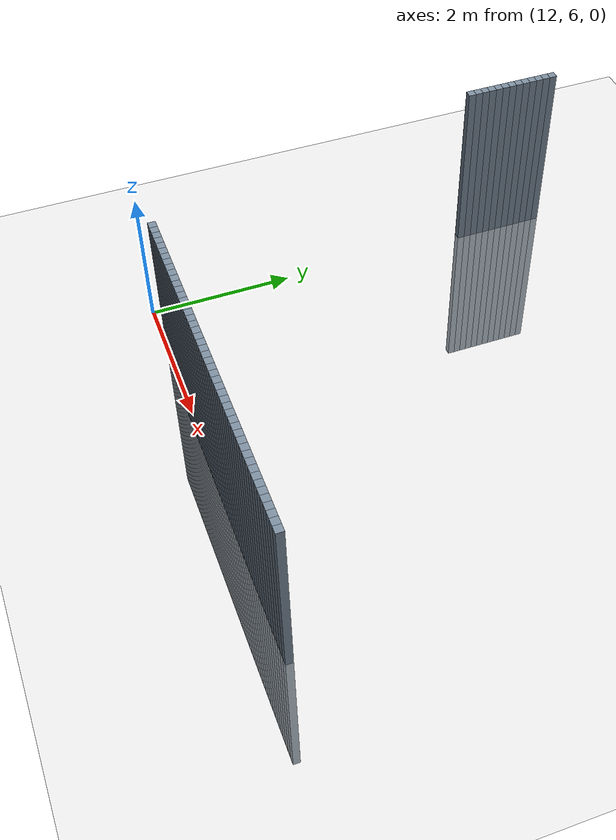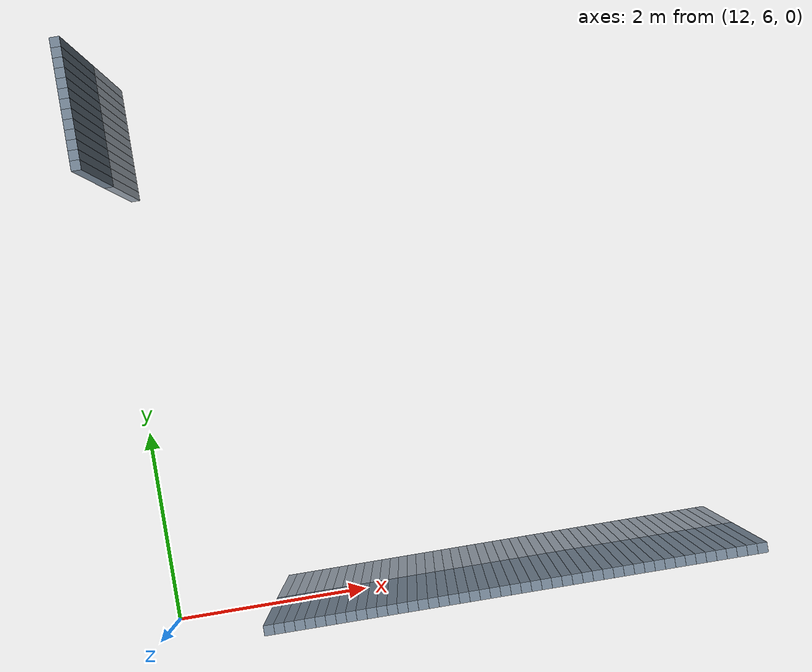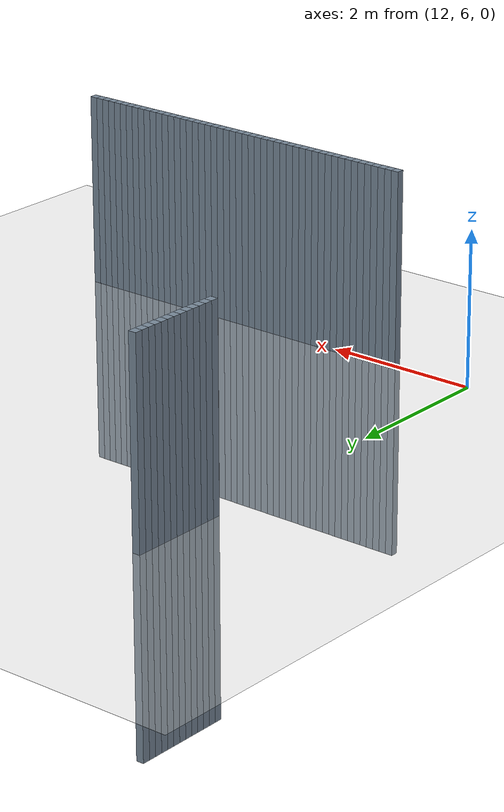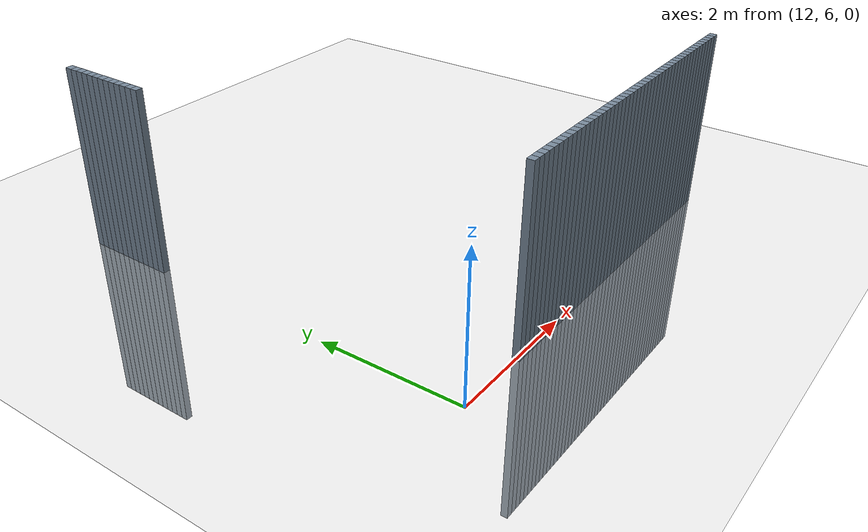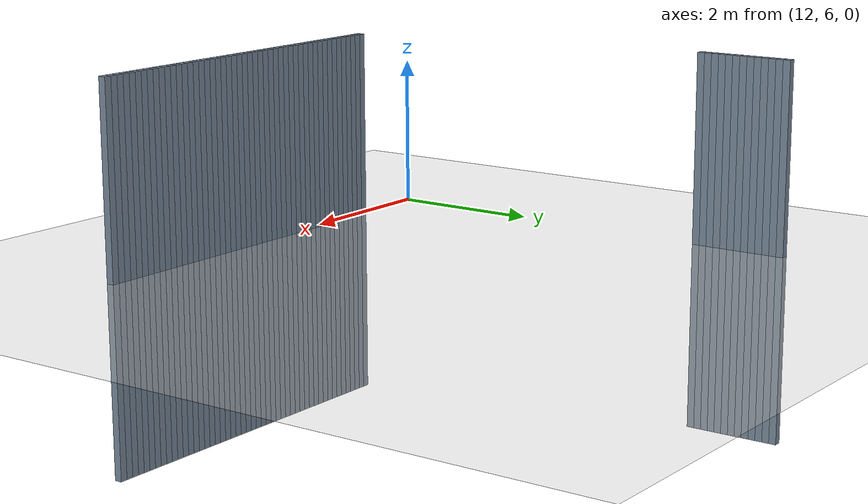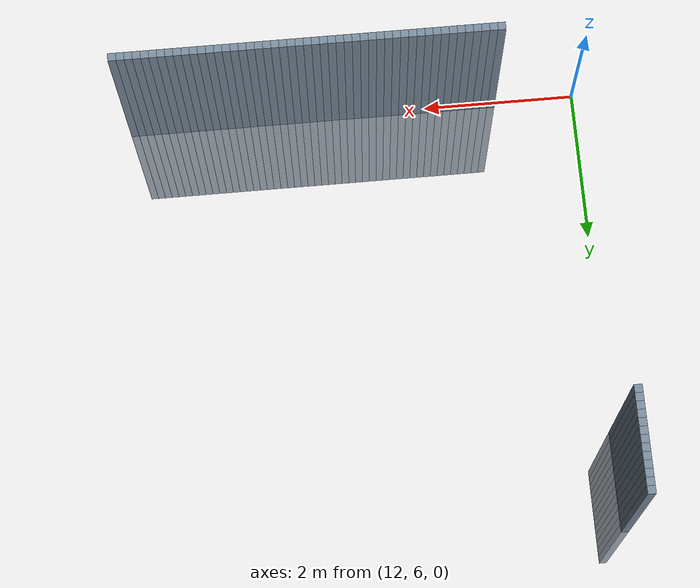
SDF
<sdf version="1.6">
 <world name="default">
  <model name="ground_plane">
   <static>1</static>
   <link name="link">
    <collision name="collision">
     <geometry><plane><normal>0 0 1</normal><size>100 100</size></plane></geometry>
     <surface><friction><ode><mu>100</mu><mu2>50</mu2></ode></friction></surface>
    </collision>
    <visual name="visual">
     <cast_shadows>0</cast_shadows>
     <geometry><plane><normal>0 0 1</normal><size>100 100</size></plane></geometry>
     <material>
      <script><uri>file://media/materials/scripts/gazebo.material</uri><name>Gazebo/Grey</name></script>
     </material>
    </visual>
   </link>
  </model>
  <model name="unit_cylinder_705">
   <static>1</static>
   <pose>12 10.7 0 0 -0 0</pose>
   <link name="link">
    <inertial>
     <mass>1</mass>
     <inertia><ixx>0.145833</ixx><ixy>0</ixy><ixz>0</ixz><iyy>0.145833</iyy><iyz>0</iyz><izz>0.125</izz></inertia>
    </inertial>
    <collision name="collision"><geometry><box><size>0.1 0.1 5</size></box></geometry></collision>
    <visual name="visual">
     <geometry><box><size>0.1 0.1 5</size></box></geometry>
     <material><ambient>0.466667 0.533333 0.6 1</ambient><diffuse>0.466667 0.533333 0.6 1</diffuse></material>
     <material>
      <script><name>Gazebo/Grey</name><uri>file://media/materials/scripts/gazebo.material</uri></script>
     </material>
    </visual>
   </link>
  </model>
  <model name="unit_cylinder_706">
   <static>1</static>
   <pose>12 10.8 0 0 -0 0</pose>
   <link name="link">
    <inertial>
     <mass>1</mass>
     <inertia><ixx>0.145833</ixx><ixy>0</ixy><ixz>0</ixz><iyy>0.145833</iyy><iyz>0</iyz><izz>0.125</izz></inertia>
    </inertial>
    <collision name="collision"><geometry><box><size>0.1 0.1 5</size></box></geometry></collision>
    <visual name="visual">
     <geometry><box><size>0.1 0.1 5</size></box></geometry>
     <material><ambient>0.466667 0.533333 0.6 1</ambient><diffuse>0.466667 0.533333 0.6 1</diffuse></material>
     <material>
      <script><name>Gazebo/Grey</name><uri>file://media/materials/scripts/gazebo.material</uri></script>
     </material>
    </visual>
   </link>
  </model>
  <model name="unit_cylinder_707">
   <static>1</static>
   <pose>12 10.9 0 0 -0 0</pose>
   <link name="link">
    <inertial>
     <mass>1</mass>
     <inertia><ixx>0.145833</ixx><ixy>0</ixy><ixz>0</ixz><iyy>0.145833</iyy><iyz>0</iyz><izz>0.125</izz></inertia>
    </inertial>
    <collision name="collision"><geometry><box><size>0.1 0.1 5</size></box></geometry></collision>
    <visual name="visual">
     <geometry><box><size>0.1 0.1 5</size></box></geometry>
     <material><ambient>0.466667 0.533333 0.6 1</ambient><diffuse>0.466667 0.533333 0.6 1</diffuse></material>
     <material>
      <script><name>Gazebo/Grey</name><uri>file://media/materials/scripts/gazebo.material</uri></script>
     </material>
    </visual>
   </link>
  </model>
  <model name="unit_cylinder_708">
   <static>1</static>
   <pose>12 11 0 0 -0 0</pose>
   <link name="link">
    <inertial>
     <mass>1</mass>
     <inertia><ixx>0.145833</ixx><ixy>0</ixy><ixz>0</ixz><iyy>0.145833</iyy><iyz>0</iyz><izz>0.125</izz></inertia>
    </inertial>
    <collision name="collision"><geometry><box><size>0.1 0.1 5</size></box></geometry></collision>
    <visual name="visual">
     <geometry><box><size>0.1 0.1 5</size></box></geometry>
     <material><ambient>0.466667 0.533333 0.6 1</ambient><diffuse>0.466667 0.533333 0.6 1</diffuse></material>
     <material>
      <script><name>Gazebo/Grey</name><uri>file://media/materials/scripts/gazebo.material</uri></script>
     </material>
    </visual>
   </link>
  </model>
  <model name="unit_cylinder_709">
   <static>1</static>
   <pose>12 11.1 0 0 -0 0</pose>
   <link name="link">
    <inertial>
     <mass>1</mass>
     <inertia><ixx>0.145833</ixx><ixy>0</ixy><ixz>0</ixz><iyy>0.145833</iyy><iyz>0</iyz><izz>0.125</izz></inertia>
    </inertial>
    <collision name="collision"><geometry><box><size>0.1 0.1 5</size></box></geometry></collision>
    <visual name="visual">
     <geometry><box><size>0.1 0.1 5</size></box></geometry>
     <material><ambient>0.466667 0.533333 0.6 1</ambient><diffuse>0.466667 0.533333 0.6 1</diffuse></material>
     <material>
      <script><name>Gazebo/Grey</name><uri>file://media/materials/scripts/gazebo.material</uri></script>
     </material>
    </visual>
   </link>
  </model>
  <model name="unit_cylinder_710">
   <static>1</static>
   <pose>12 11.2 0 0 -0 0</pose>
   <link name="link">
    <inertial>
     <mass>1</mass>
     <inertia><ixx>0.145833</ixx><ixy>0</ixy><ixz>0</ixz><iyy>0.145833</iyy><iyz>0</iyz><izz>0.125</izz></inertia>
    </inertial>
    <collision name="collision"><geometry><box><size>0.1 0.1 5</size></box></geometry></collision>
    <visual name="visual">
     <geometry><box><size>0.1 0.1 5</size></box></geometry>
     <material><ambient>0.466667 0.533333 0.6 1</ambient><diffuse>0.466667 0.533333 0.6 1</diffuse></material>
     <material>
      <script><name>Gazebo/Grey</name><uri>file://media/materials/scripts/gazebo.material</uri></script>
     </material>
    </visual>
   </link>
  </model>
  <model name="unit_cylinder_711">
   <static>1</static>
   <pose>12 11.3 0 0 -0 0</pose>
   <link name="link">
    <inertial>
     <mass>1</mass>
     <inertia><ixx>0.145833</ixx><ixy>0</ixy><ixz>0</ixz><iyy>0.145833</iyy><iyz>0</iyz><izz>0.125</izz></inertia>
    </inertial>
    <collision name="collision"><geometry><box><size>0.1 0.1 5</size></box></geometry></collision>
    <visual name="visual">
     <geometry><box><size>0.1 0.1 5</size></box></geometry>
     <material><ambient>0.466667 0.533333 0.6 1</ambient><diffuse>0.466667 0.533333 0.6 1</diffuse></material>
     <material>
      <script><name>Gazebo/Grey</name><uri>file://media/materials/scripts/gazebo.material</uri></script>
     </material>
    </visual>
   </link>
  </model>
  <model name="unit_cylinder_712">
   <static>1</static>
   <pose>12 11.4 0 0 -0 0</pose>
   <link name="link">
    <inertial>
     <mass>1</mass>
     <inertia><ixx>0.145833</ixx><ixy>0</ixy><ixz>0</ixz><iyy>0.145833</iyy><iyz>0</iyz><izz>0.125</izz></inertia>
    </inertial>
    <collision name="collision"><geometry><box><size>0.1 0.1 5</size></box></geometry></collision>
    <visual name="visual">
     <geometry><box><size>0.1 0.1 5</size></box></geometry>
     <material><ambient>0.466667 0.533333 0.6 1</ambient><diffuse>0.466667 0.533333 0.6 1</diffuse></material>
     <material>
      <script><name>Gazebo/Grey</name><uri>file://media/materials/scripts/gazebo.material</uri></script>
     </material>
    </visual>
   </link>
  </model>
  <model name="unit_cylinder_713">
   <static>1</static>
   <pose>12 11.5 0 0 -0 0</pose>
   <link name="link">
    <inertial>
     <mass>1</mass>
     <inertia><ixx>0.145833</ixx><ixy>0</ixy><ixz>0</ixz><iyy>0.145833</iyy><iyz>0</iyz><izz>0.125</izz></inertia>
    </inertial>
    <collision name="collision"><geometry><box><size>0.1 0.1 5</size></box></geometry></collision>
    <visual name="visual">
     <geometry><box><size>0.1 0.1 5</size></box></geometry>
     <material><ambient>0.466667 0.533333 0.6 1</ambient><diffuse>0.466667 0.533333 0.6 1</diffuse></material>
     <material>
      <script><name>Gazebo/Grey</name><uri>file://media/materials/scripts/gazebo.material</uri></script>
     </material>
    </visual>
   </link>
  </model>
  <model name="unit_cylinder_714">
   <static>1</static>
   <pose>12 11.6 0 0 -0 0</pose>
   <link name="link">
    <inertial>
     <mass>1</mass>
     <inertia><ixx>0.145833</ixx><ixy>0</ixy><ixz>0</ixz><iyy>0.145833</iyy><iyz>0</iyz><izz>0.125</izz></inertia>
    </inertial>
    <collision name="collision"><geometry><box><size>0.1 0.1 5</size></box></geometry></collision>
    <visual name="visual">
     <geometry><box><size>0.1 0.1 5</size></box></geometry>
     <material><ambient>0.466667 0.533333 0.6 1</ambient><diffuse>0.466667 0.533333 0.6 1</diffuse></material>
     <material>
      <script><name>Gazebo/Grey</name><uri>file://media/materials/scripts/gazebo.material</uri></script>
     </material>
    </visual>
   </link>
  </model>
  <model name="unit_cylinder_715">
   <static>1</static>
   <pose>12 11.7 0 0 -0 0</pose>
   <link name="link">
    <inertial>
     <mass>1</mass>
     <inertia><ixx>0.145833</ixx><ixy>0</ixy><ixz>0</ixz><iyy>0.145833</iyy><iyz>0</iyz><izz>0.125</izz></inertia>
    </inertial>
    <collision name="collision"><geometry><box><size>0.1 0.1 5</size></box></geometry></collision>
    <visual name="visual">
     <geometry><box><size>0.1 0.1 5</size></box></geometry>
     <material><ambient>0.466667 0.533333 0.6 1</ambient><diffuse>0.466667 0.533333 0.6 1</diffuse></material>
     <material>
      <script><name>Gazebo/Grey</name><uri>file://media/materials/scripts/gazebo.material</uri></script>
     </material>
    </visual>
   </link>
  </model>
  <model name="unit_cylinder_716">
   <static>1</static>
   <pose>12 11.8 0 0 -0 0</pose>
   <link name="link">
    <inertial>
     <mass>1</mass>
     <inertia><ixx>0.145833</ixx><ixy>0</ixy><ixz>0</ixz><iyy>0.145833</iyy><iyz>0</iyz><izz>0.125</izz></inertia>
    </inertial>
    <collision name="collision"><geometry><box><size>0.1 0.1 5</size></box></geometry></collision>
    <visual name="visual">
     <geometry><box><size>0.1 0.1 5</size></box></geometry>
     <material><ambient>0.466667 0.533333 0.6 1</ambient><diffuse>0.466667 0.533333 0.6 1</diffuse></material>
     <material>
      <script><name>Gazebo/Grey</name><uri>file://media/materials/scripts/gazebo.material</uri></script>
     </material>
    </visual>
   </link>
  </model>
  <model name="unit_cylinder_717">
   <static>1</static>
   <pose>12 11.9 0 0 -0 0</pose>
   <link name="link">
    <inertial>
     <mass>1</mass>
     <inertia><ixx>0.145833</ixx><ixy>0</ixy><ixz>0</ixz><iyy>0.145833</iyy><iyz>0</iyz><izz>0.125</izz></inertia>
    </inertial>
    <collision name="collision"><geometry><box><size>0.1 0.1 5</size></box></geometry></collision>
    <visual name="visual">
     <geometry><box><size>0.1 0.1 5</size></box></geometry>
     <material><ambient>0.466667 0.533333 0.6 1</ambient><diffuse>0.466667 0.533333 0.6 1</diffuse></material>
     <material>
      <script><name>Gazebo/Grey</name><uri>file://media/materials/scripts/gazebo.material</uri></script>
     </material>
    </visual>
   </link>
  </model>
  <model name="unit_cylinder_800">
   <static>1</static>
   <pose>13.1 6 0 0 -0 0</pose>
   <link name="link">
    <inertial>
     <mass>1</mass>
     <inertia><ixx>0.145833</ixx><ixy>0</ixy><ixz>0</ixz><iyy>0.145833</iyy><iyz>0</iyz><izz>0.125</izz></inertia>
    </inertial>
    <collision name="collision"><geometry><box><size>0.1 0.1 5</size></box></geometry></collision>
    <visual name="visual">
     <geometry><box><size>0.1 0.1 5</size></box></geometry>
     <material><ambient>0.466667 0.533333 0.6 1</ambient><diffuse>0.466667 0.533333 0.6 1</diffuse></material>
     <material>
      <script><name>Gazebo/Grey</name><uri>file://media/materials/scripts/gazebo.material</uri></script>
     </material>
    </visual>
   </link>
  </model>
  <model name="unit_cylinder_802">
   <static>1</static>
   <pose>13.2 6 0 0 -0 0</pose>
   <link name="link">
    <inertial>
     <mass>1</mass>
     <inertia><ixx>0.145833</ixx><ixy>0</ixy><ixz>0</ixz><iyy>0.145833</iyy><iyz>0</iyz><izz>0.125</izz></inertia>
    </inertial>
    <collision name="collision"><geometry><box><size>0.1 0.1 5</size></box></geometry></collision>
    <visual name="visual">
     <geometry><box><size>0.1 0.1 5</size></box></geometry>
     <material><ambient>0.466667 0.533333 0.6 1</ambient><diffuse>0.466667 0.533333 0.6 1</diffuse></material>
     <material>
      <script><name>Gazebo/Grey</name><uri>file://media/materials/scripts/gazebo.material</uri></script>
     </material>
    </visual>
   </link>
  </model>
  <model name="unit_cylinder_804">
   <static>1</static>
   <pose>13.3 6 0 0 -0 0</pose>
   <link name="link">
    <inertial>
     <mass>1</mass>
     <inertia><ixx>0.145833</ixx><ixy>0</ixy><ixz>0</ixz><iyy>0.145833</iyy><iyz>0</iyz><izz>0.125</izz></inertia>
    </inertial>
    <collision name="collision"><geometry><box><size>0.1 0.1 5</size></box></geometry></collision>
    <visual name="visual">
     <geometry><box><size>0.1 0.1 5</size></box></geometry>
     <material><ambient>0.466667 0.533333 0.6 1</ambient><diffuse>0.466667 0.533333 0.6 1</diffuse></material>
     <material>
      <script><name>Gazebo/Grey</name><uri>file://media/materials/scripts/gazebo.material</uri></script>
     </material>
    </visual>
   </link>
  </model>
  <model name="unit_cylinder_806">
   <static>1</static>
   <pose>13.4 6 0 0 -0 0</pose>
   <link name="link">
    <inertial>
     <mass>1</mass>
     <inertia><ixx>0.145833</ixx><ixy>0</ixy><ixz>0</ixz><iyy>0.145833</iyy><iyz>0</iyz><izz>0.125</izz></inertia>
    </inertial>
    <collision name="collision"><geometry><box><size>0.1 0.1 5</size></box></geometry></collision>
    <visual name="visual">
     <geometry><box><size>0.1 0.1 5</size></box></geometry>
     <material><ambient>0.466667 0.533333 0.6 1</ambient><diffuse>0.466667 0.533333 0.6 1</diffuse></material>
     <material>
      <script><name>Gazebo/Grey</name><uri>file://media/materials/scripts/gazebo.material</uri></script>
     </material>
    </visual>
   </link>
  </model>
  <model name="unit_cylinder_808">
   <static>1</static>
   <pose>13.5 6 0 0 -0 0</pose>
   <link name="link">
    <inertial>
     <mass>1</mass>
     <inertia><ixx>0.145833</ixx><ixy>0</ixy><ixz>0</ixz><iyy>0.145833</iyy><iyz>0</iyz><izz>0.125</izz></inertia>
    </inertial>
    <collision name="collision"><geometry><box><size>0.1 0.1 5</size></box></geometry></collision>
    <visual name="visual">
     <geometry><box><size>0.1 0.1 5</size></box></geometry>
     <material><ambient>0.466667 0.533333 0.6 1</ambient><diffuse>0.466667 0.533333 0.6 1</diffuse></material>
     <material>
      <script><name>Gazebo/Grey</name><uri>file://media/materials/scripts/gazebo.material</uri></script>
     </material>
    </visual>
   </link>
  </model>
  <model name="unit_cylinder_810">
   <static>1</static>
   <pose>13.6 6 0 0 -0 0</pose>
   <link name="link">
    <inertial>
     <mass>1</mass>
     <inertia><ixx>0.145833</ixx><ixy>0</ixy><ixz>0</ixz><iyy>0.145833</iyy><iyz>0</iyz><izz>0.125</izz></inertia>
    </inertial>
    <collision name="collision"><geometry><box><size>0.1 0.1 5</size></box></geometry></collision>
    <visual name="visual">
     <geometry><box><size>0.1 0.1 5</size></box></geometry>
     <material><ambient>0.466667 0.533333 0.6 1</ambient><diffuse>0.466667 0.533333 0.6 1</diffuse></material>
     <material>
      <script><name>Gazebo/Grey</name><uri>file://media/materials/scripts/gazebo.material</uri></script>
     </material>
    </visual>
   </link>
  </model>
  <model name="unit_cylinder_812">
   <static>1</static>
   <pose>13.7 6 0 0 -0 0</pose>
   <link name="link">
    <inertial>
     <mass>1</mass>
     <inertia><ixx>0.145833</ixx><ixy>0</ixy><ixz>0</ixz><iyy>0.145833</iyy><iyz>0</iyz><izz>0.125</izz></inertia>
    </inertial>
    <collision name="collision"><geometry><box><size>0.1 0.1 5</size></box></geometry></collision>
    <visual name="visual">
     <geometry><box><size>0.1 0.1 5</size></box></geometry>
     <material><ambient>0.466667 0.533333 0.6 1</ambient><diffuse>0.466667 0.533333 0.6 1</diffuse></material>
     <material>
      <script><name>Gazebo/Grey</name><uri>file://media/materials/scripts/gazebo.material</uri></script>
     </material>
    </visual>
   </link>
  </model>
  <model name="unit_cylinder_814">
   <static>1</static>
   <pose>13.8 6 0 0 -0 0</pose>
   <link name="link">
    <inertial>
     <mass>1</mass>
     <inertia><ixx>0.145833</ixx><ixy>0</ixy><ixz>0</ixz><iyy>0.145833</iyy><iyz>0</iyz><izz>0.125</izz></inertia>
    </inertial>
    <collision name="collision"><geometry><box><size>0.1 0.1 5</size></box></geometry></collision>
    <visual name="visual">
     <geometry><box><size>0.1 0.1 5</size></box></geometry>
     <material><ambient>0.466667 0.533333 0.6 1</ambient><diffuse>0.466667 0.533333 0.6 1</diffuse></material>
     <material>
      <script><name>Gazebo/Grey</name><uri>file://media/materials/scripts/gazebo.material</uri></script>
     </material>
    </visual>
   </link>
  </model>
  <model name="unit_cylinder_816">
   <static>1</static>
   <pose>13.9 6 0 0 -0 0</pose>
   <link name="link">
    <inertial>
     <mass>1</mass>
     <inertia><ixx>0.145833</ixx><ixy>0</ixy><ixz>0</ixz><iyy>0.145833</iyy><iyz>0</iyz><izz>0.125</izz></inertia>
    </inertial>
    <collision name="collision"><geometry><box><size>0.1 0.1 5</size></box></geometry></collision>
    <visual name="visual">
     <geometry><box><size>0.1 0.1 5</size></box></geometry>
     <material><ambient>0.466667 0.533333 0.6 1</ambient><diffuse>0.466667 0.533333 0.6 1</diffuse></material>
     <material>
      <script><name>Gazebo/Grey</name><uri>file://media/materials/scripts/gazebo.material</uri></script>
     </material>
    </visual>
   </link>
  </model>
  <model name="unit_cylinder_818">
   <static>1</static>
   <pose>14 6 0 0 -0 0</pose>
   <link name="link">
    <inertial>
     <mass>1</mass>
     <inertia><ixx>0.145833</ixx><ixy>0</ixy><ixz>0</ixz><iyy>0.145833</iyy><iyz>0</iyz><izz>0.125</izz></inertia>
    </inertial>
    <collision name="collision"><geometry><box><size>0.1 0.1 5</size></box></geometry></collision>
    <visual name="visual">
     <geometry><box><size>0.1 0.1 5</size></box></geometry>
     <material><ambient>0.466667 0.533333 0.6 1</ambient><diffuse>0.466667 0.533333 0.6 1</diffuse></material>
     <material>
      <script><name>Gazebo/Grey</name><uri>file://media/materials/scripts/gazebo.material</uri></script>
     </material>
    </visual>
   </link>
  </model>
  <model name="unit_cylinder_820">
   <static>1</static>
   <pose>14.1 6 0 0 -0 0</pose>
   <link name="link">
    <inertial>
     <mass>1</mass>
     <inertia><ixx>0.145833</ixx><ixy>0</ixy><ixz>0</ixz><iyy>0.145833</iyy><iyz>0</iyz><izz>0.125</izz></inertia>
    </inertial>
    <collision name="collision"><geometry><box><size>0.1 0.1 5</size></box></geometry></collision>
    <visual name="visual">
     <geometry><box><size>0.1 0.1 5</size></box></geometry>
     <material><ambient>0.466667 0.533333 0.6 1</ambient><diffuse>0.466667 0.533333 0.6 1</diffuse></material>
     <material>
      <script><name>Gazebo/Grey</name><uri>file://media/materials/scripts/gazebo.material</uri></script>
     </material>
    </visual>
   </link>
  </model>
  <model name="unit_cylinder_822">
   <static>1</static>
   <pose>14.2 6 0 0 -0 0</pose>
   <link name="link">
    <inertial>
     <mass>1</mass>
     <inertia><ixx>0.145833</ixx><ixy>0</ixy><ixz>0</ixz><iyy>0.145833</iyy><iyz>0</iyz><izz>0.125</izz></inertia>
    </inertial>
    <collision name="collision"><geometry><box><size>0.1 0.1 5</size></box></geometry></collision>
    <visual name="visual">
     <geometry><box><size>0.1 0.1 5</size></box></geometry>
     <material><ambient>0.466667 0.533333 0.6 1</ambient><diffuse>0.466667 0.533333 0.6 1</diffuse></material>
     <material>
      <script><name>Gazebo/Grey</name><uri>file://media/materials/scripts/gazebo.material</uri></script>
     </material>
    </visual>
   </link>
  </model>
  <model name="unit_cylinder_824">
   <static>1</static>
   <pose>14.3 6 0 0 -0 0</pose>
   <link name="link">
    <inertial>
     <mass>1</mass>
     <inertia><ixx>0.145833</ixx><ixy>0</ixy><ixz>0</ixz><iyy>0.145833</iyy><iyz>0</iyz><izz>0.125</izz></inertia>
    </inertial>
    <collision name="collision"><geometry><box><size>0.1 0.1 5</size></box></geometry></collision>
    <visual name="visual">
     <geometry><box><size>0.1 0.1 5</size></box></geometry>
     <material><ambient>0.466667 0.533333 0.6 1</ambient><diffuse>0.466667 0.533333 0.6 1</diffuse></material>
     <material>
      <script><name>Gazebo/Grey</name><uri>file://media/materials/scripts/gazebo.material</uri></script>
     </material>
    </visual>
   </link>
  </model>
  <model name="unit_cylinder_826">
   <static>1</static>
   <pose>14.4 6 0 0 -0 0</pose>
   <link name="link">
    <inertial>
     <mass>1</mass>
     <inertia><ixx>0.145833</ixx><ixy>0</ixy><ixz>0</ixz><iyy>0.145833</iyy><iyz>0</iyz><izz>0.125</izz></inertia>
    </inertial>
    <collision name="collision"><geometry><box><size>0.1 0.1 5</size></box></geometry></collision>
    <visual name="visual">
     <geometry><box><size>0.1 0.1 5</size></box></geometry>
     <material><ambient>0.466667 0.533333 0.6 1</ambient><diffuse>0.466667 0.533333 0.6 1</diffuse></material>
     <material>
      <script><name>Gazebo/Grey</name><uri>file://media/materials/scripts/gazebo.material</uri></script>
     </material>
    </visual>
   </link>
  </model>
  <model name="unit_cylinder_828">
   <static>1</static>
   <pose>14.5 6 0 0 -0 0</pose>
   <link name="link">
    <inertial>
     <mass>1</mass>
     <inertia><ixx>0.145833</ixx><ixy>0</ixy><ixz>0</ixz><iyy>0.145833</iyy><iyz>0</iyz><izz>0.125</izz></inertia>
    </inertial>
    <collision name="collision"><geometry><box><size>0.1 0.1 5</size></box></geometry></collision>
    <visual name="visual">
     <geometry><box><size>0.1 0.1 5</size></box></geometry>
     <material><ambient>0.466667 0.533333 0.6 1</ambient><diffuse>0.466667 0.533333 0.6 1</diffuse></material>
     <material>
      <script><name>Gazebo/Grey</name><uri>file://media/materials/scripts/gazebo.material</uri></script>
     </material>
    </visual>
   </link>
  </model>
  <model name="unit_cylinder_830">
   <static>1</static>
   <pose>14.6 6 0 0 -0 0</pose>
   <link name="link">
    <inertial>
     <mass>1</mass>
     <inertia><ixx>0.145833</ixx><ixy>0</ixy><ixz>0</ixz><iyy>0.145833</iyy><iyz>0</iyz><izz>0.125</izz></inertia>
    </inertial>
    <collision name="collision"><geometry><box><size>0.1 0.1 5</size></box></geometry></collision>
    <visual name="visual">
     <geometry><box><size>0.1 0.1 5</size></box></geometry>
     <material><ambient>0.466667 0.533333 0.6 1</ambient><diffuse>0.466667 0.533333 0.6 1</diffuse></material>
     <material>
      <script><name>Gazebo/Grey</name><uri>file://media/materials/scripts/gazebo.material</uri></script>
     </material>
    </visual>
   </link>
  </model>
  <model name="unit_cylinder_832">
   <static>1</static>
   <pose>14.7 6 0 0 -0 0</pose>
   <link name="link">
    <inertial>
     <mass>1</mass>
     <inertia><ixx>0.145833</ixx><ixy>0</ixy><ixz>0</ixz><iyy>0.145833</iyy><iyz>0</iyz><izz>0.125</izz></inertia>
    </inertial>
    <collision name="collision"><geometry><box><size>0.1 0.1 5</size></box></geometry></collision>
    <visual name="visual">
     <geometry><box><size>0.1 0.1 5</size></box></geometry>
     <material><ambient>0.466667 0.533333 0.6 1</ambient><diffuse>0.466667 0.533333 0.6 1</diffuse></material>
     <material>
      <script><name>Gazebo/Grey</name><uri>file://media/materials/scripts/gazebo.material</uri></script>
     </material>
    </visual>
   </link>
  </model>
  <model name="unit_cylinder_834">
   <static>1</static>
   <pose>14.8 6 0 0 -0 0</pose>
   <link name="link">
    <inertial>
     <mass>1</mass>
     <inertia><ixx>0.145833</ixx><ixy>0</ixy><ixz>0</ixz><iyy>0.145833</iyy><iyz>0</iyz><izz>0.125</izz></inertia>
    </inertial>
    <collision name="collision"><geometry><box><size>0.1 0.1 5</size></box></geometry></collision>
    <visual name="visual">
     <geometry><box><size>0.1 0.1 5</size></box></geometry>
     <material><ambient>0.466667 0.533333 0.6 1</ambient><diffuse>0.466667 0.533333 0.6 1</diffuse></material>
     <material>
      <script><name>Gazebo/Grey</name><uri>file://media/materials/scripts/gazebo.material</uri></script>
     </material>
    </visual>
   </link>
  </model>
  <model name="unit_cylinder_836">
   <static>1</static>
   <pose>14.9 6 0 0 -0 0</pose>
   <link name="link">
    <inertial>
     <mass>1</mass>
     <inertia><ixx>0.145833</ixx><ixy>0</ixy><ixz>0</ixz><iyy>0.145833</iyy><iyz>0</iyz><izz>0.125</izz></inertia>
    </inertial>
    <collision name="collision"><geometry><box><size>0.1 0.1 5</size></box></geometry></collision>
    <visual name="visual">
     <geometry><box><size>0.1 0.1 5</size></box></geometry>
     <material><ambient>0.466667 0.533333 0.6 1</ambient><diffuse>0.466667 0.533333 0.6 1</diffuse></material>
     <material>
      <script><name>Gazebo/Grey</name><uri>file://media/materials/scripts/gazebo.material</uri></script>
     </material>
    </visual>
   </link>
  </model>
  <model name="unit_cylinder_838">
   <static>1</static>
   <pose>15 6 0 0 -0 0</pose>
   <link name="link">
    <inertial>
     <mass>1</mass>
     <inertia><ixx>0.145833</ixx><ixy>0</ixy><ixz>0</ixz><iyy>0.145833</iyy><iyz>0</iyz><izz>0.125</izz></inertia>
    </inertial>
    <collision name="collision"><geometry><box><size>0.1 0.1 5</size></box></geometry></collision>
    <visual name="visual">
     <geometry><box><size>0.1 0.1 5</size></box></geometry>
     <material><ambient>0.466667 0.533333 0.6 1</ambient><diffuse>0.466667 0.533333 0.6 1</diffuse></material>
     <material>
      <script><name>Gazebo/Grey</name><uri>file://media/materials/scripts/gazebo.material</uri></script>
     </material>
    </visual>
   </link>
  </model>
  <model name="unit_cylinder_840">
   <static>1</static>
   <pose>15.1 6 0 0 -0 0</pose>
   <link name="link">
    <inertial>
     <mass>1</mass>
     <inertia><ixx>0.145833</ixx><ixy>0</ixy><ixz>0</ixz><iyy>0.145833</iyy><iyz>0</iyz><izz>0.125</izz></inertia>
    </inertial>
    <collision name="collision"><geometry><box><size>0.1 0.1 5</size></box></geometry></collision>
    <visual name="visual">
     <geometry><box><size>0.1 0.1 5</size></box></geometry>
     <material><ambient>0.466667 0.533333 0.6 1</ambient><diffuse>0.466667 0.533333 0.6 1</diffuse></material>
     <material>
      <script><name>Gazebo/Grey</name><uri>file://media/materials/scripts/gazebo.material</uri></script>
     </material>
    </visual>
   </link>
  </model>
  <model name="unit_cylinder_842">
   <static>1</static>
   <pose>15.2 6 0 0 -0 0</pose>
   <link name="link">
    <inertial>
     <mass>1</mass>
     <inertia><ixx>0.145833</ixx><ixy>0</ixy><ixz>0</ixz><iyy>0.145833</iyy><iyz>0</iyz><izz>0.125</izz></inertia>
    </inertial>
    <collision name="collision"><geometry><box><size>0.1 0.1 5</size></box></geometry></collision>
    <visual name="visual">
     <geometry><box><size>0.1 0.1 5</size></box></geometry>
     <material><ambient>0.466667 0.533333 0.6 1</ambient><diffuse>0.466667 0.533333 0.6 1</diffuse></material>
     <material>
      <script><name>Gazebo/Grey</name><uri>file://media/materials/scripts/gazebo.material</uri></script>
     </material>
    </visual>
   </link>
  </model>
  <model name="unit_cylinder_844">
   <static>1</static>
   <pose>15.3 6 0 0 -0 0</pose>
   <link name="link">
    <inertial>
     <mass>1</mass>
     <inertia><ixx>0.145833</ixx><ixy>0</ixy><ixz>0</ixz><iyy>0.145833</iyy><iyz>0</iyz><izz>0.125</izz></inertia>
    </inertial>
    <collision name="collision"><geometry><box><size>0.1 0.1 5</size></box></geometry></collision>
    <visual name="visual">
     <geometry><box><size>0.1 0.1 5</size></box></geometry>
     <material><ambient>0.466667 0.533333 0.6 1</ambient><diffuse>0.466667 0.533333 0.6 1</diffuse></material>
     <material>
      <script><name>Gazebo/Grey</name><uri>file://media/materials/scripts/gazebo.material</uri></script>
     </material>
    </visual>
   </link>
  </model>
  <model name="unit_cylinder_846">
   <static>1</static>
   <pose>15.4 6 0 0 -0 0</pose>
   <link name="link">
    <inertial>
     <mass>1</mass>
     <inertia><ixx>0.145833</ixx><ixy>0</ixy><ixz>0</ixz><iyy>0.145833</iyy><iyz>0</iyz><izz>0.125</izz></inertia>
    </inertial>
    <collision name="collision"><geometry><box><size>0.1 0.1 5</size></box></geometry></collision>
    <visual name="visual">
     <geometry><box><size>0.1 0.1 5</size></box></geometry>
     <material><ambient>0.466667 0.533333 0.6 1</ambient><diffuse>0.466667 0.533333 0.6 1</diffuse></material>
     <material>
      <script><name>Gazebo/Grey</name><uri>file://media/materials/scripts/gazebo.material</uri></script>
     </material>
    </visual>
   </link>
  </model>
  <model name="unit_cylinder_848">
   <static>1</static>
   <pose>15.5 6 0 0 -0 0</pose>
   <link name="link">
    <inertial>
     <mass>1</mass>
     <inertia><ixx>0.145833</ixx><ixy>0</ixy><ixz>0</ixz><iyy>0.145833</iyy><iyz>0</iyz><izz>0.125</izz></inertia>
    </inertial>
    <collision name="collision"><geometry><box><size>0.1 0.1 5</size></box></geometry></collision>
    <visual name="visual">
     <geometry><box><size>0.1 0.1 5</size></box></geometry>
     <material><ambient>0.466667 0.533333 0.6 1</ambient><diffuse>0.466667 0.533333 0.6 1</diffuse></material>
     <material>
      <script><name>Gazebo/Grey</name><uri>file://media/materials/scripts/gazebo.material</uri></script>
     </material>
    </visual>
   </link>
  </model>
  <model name="unit_cylinder_850">
   <static>1</static>
   <pose>15.6 6 0 0 -0 0</pose>
   <link name="link">
    <inertial>
     <mass>1</mass>
     <inertia><ixx>0.145833</ixx><ixy>0</ixy><ixz>0</ixz><iyy>0.145833</iyy><iyz>0</iyz><izz>0.125</izz></inertia>
    </inertial>
    <collision name="collision"><geometry><box><size>0.1 0.1 5</size></box></geometry></collision>
    <visual name="visual">
     <geometry><box><size>0.1 0.1 5</size></box></geometry>
     <material><ambient>0.466667 0.533333 0.6 1</ambient><diffuse>0.466667 0.533333 0.6 1</diffuse></material>
     <material>
      <script><name>Gazebo/Grey</name><uri>file://media/materials/scripts/gazebo.material</uri></script>
     </material>
    </visual>
   </link>
  </model>
  <model name="unit_cylinder_852">
   <static>1</static>
   <pose>15.7 6 0 0 -0 0</pose>
   <link name="link">
    <inertial>
     <mass>1</mass>
     <inertia><ixx>0.145833</ixx><ixy>0</ixy><ixz>0</ixz><iyy>0.145833</iyy><iyz>0</iyz><izz>0.125</izz></inertia>
    </inertial>
    <collision name="collision"><geometry><box><size>0.1 0.1 5</size></box></geometry></collision>
    <visual name="visual">
     <geometry><box><size>0.1 0.1 5</size></box></geometry>
     <material><ambient>0.466667 0.533333 0.6 1</ambient><diffuse>0.466667 0.533333 0.6 1</diffuse></material>
     <material>
      <script><name>Gazebo/Grey</name><uri>file://media/materials/scripts/gazebo.material</uri></script>
     </material>
    </visual>
   </link>
  </model>
  <model name="unit_cylinder_854">
   <static>1</static>
   <pose>15.8 6 0 0 -0 0</pose>
   <link name="link">
    <inertial>
     <mass>1</mass>
     <inertia><ixx>0.145833</ixx><ixy>0</ixy><ixz>0</ixz><iyy>0.145833</iyy><iyz>0</iyz><izz>0.125</izz></inertia>
    </inertial>
    <collision name="collision"><geometry><box><size>0.1 0.1 5</size></box></geometry></collision>
    <visual name="visual">
     <geometry><box><size>0.1 0.1 5</size></box></geometry>
     <material><ambient>0.466667 0.533333 0.6 1</ambient><diffuse>0.466667 0.533333 0.6 1</diffuse></material>
     <material>
      <script><name>Gazebo/Grey</name><uri>file://media/materials/scripts/gazebo.material</uri></script>
     </material>
    </visual>
   </link>
  </model>
  <model name="unit_cylinder_856">
   <static>1</static>
   <pose>15.9 6 0 0 -0 0</pose>
   <link name="link">
    <inertial>
     <mass>1</mass>
     <inertia><ixx>0.145833</ixx><ixy>0</ixy><ixz>0</ixz><iyy>0.145833</iyy><iyz>0</iyz><izz>0.125</izz></inertia>
    </inertial>
    <collision name="collision"><geometry><box><size>0.1 0.1 5</size></box></geometry></collision>
    <visual name="visual">
     <geometry><box><size>0.1 0.1 5</size></box></geometry>
     <material><ambient>0.466667 0.533333 0.6 1</ambient><diffuse>0.466667 0.533333 0.6 1</diffuse></material>
     <material>
      <script><name>Gazebo/Grey</name><uri>file://media/materials/scripts/gazebo.material</uri></script>
     </material>
    </visual>
   </link>
  </model>
  <model name="unit_cylinder_858">
   <static>1</static>
   <pose>16 6 0 0 -0 0</pose>
   <link name="link">
    <inertial>
     <mass>1</mass>
     <inertia><ixx>0.145833</ixx><ixy>0</ixy><ixz>0</ixz><iyy>0.145833</iyy><iyz>0</iyz><izz>0.125</izz></inertia>
    </inertial>
    <collision name="collision"><geometry><box><size>0.1 0.1 5</size></box></geometry></collision>
    <visual name="visual">
     <geometry><box><size>0.1 0.1 5</size></box></geometry>
     <material><ambient>0.466667 0.533333 0.6 1</ambient><diffuse>0.466667 0.533333 0.6 1</diffuse></material>
     <material>
      <script><name>Gazebo/Grey</name><uri>file://media/materials/scripts/gazebo.material</uri></script>
     </material>
    </visual>
   </link>
  </model>
  <model name="unit_cylinder_860">
   <static>1</static>
   <pose>16.1 6 0 0 -0 0</pose>
   <link name="link">
    <inertial>
     <mass>1</mass>
     <inertia><ixx>0.145833</ixx><ixy>0</ixy><ixz>0</ixz><iyy>0.145833</iyy><iyz>0</iyz><izz>0.125</izz></inertia>
    </inertial>
    <collision name="collision"><geometry><box><size>0.1 0.1 5</size></box></geometry></collision>
    <visual name="visual">
     <geometry><box><size>0.1 0.1 5</size></box></geometry>
     <material><ambient>0.466667 0.533333 0.6 1</ambient><diffuse>0.466667 0.533333 0.6 1</diffuse></material>
     <material>
      <script><name>Gazebo/Grey</name><uri>file://media/materials/scripts/gazebo.material</uri></script>
     </material>
    </visual>
   </link>
  </model>
  <model name="unit_cylinder_862">
   <static>1</static>
   <pose>16.2 6 0 0 -0 0</pose>
   <link name="link">
    <inertial>
     <mass>1</mass>
     <inertia><ixx>0.145833</ixx><ixy>0</ixy><ixz>0</ixz><iyy>0.145833</iyy><iyz>0</iyz><izz>0.125</izz></inertia>
    </inertial>
    <collision name="collision"><geometry><box><size>0.1 0.1 5</size></box></geometry></collision>
    <visual name="visual">
     <geometry><box><size>0.1 0.1 5</size></box></geometry>
     <material><ambient>0.466667 0.533333 0.6 1</ambient><diffuse>0.466667 0.533333 0.6 1</diffuse></material>
     <material>
      <script><name>Gazebo/Grey</name><uri>file://media/materials/scripts/gazebo.material</uri></script>
     </material>
    </visual>
   </link>
  </model>
  <model name="unit_cylinder_864">
   <static>1</static>
   <pose>16.3 6 0 0 -0 0</pose>
   <link name="link">
    <inertial>
     <mass>1</mass>
     <inertia><ixx>0.145833</ixx><ixy>0</ixy><ixz>0</ixz><iyy>0.145833</iyy><iyz>0</iyz><izz>0.125</izz></inertia>
    </inertial>
    <collision name="collision"><geometry><box><size>0.1 0.1 5</size></box></geometry></collision>
    <visual name="visual">
     <geometry><box><size>0.1 0.1 5</size></box></geometry>
     <material><ambient>0.466667 0.533333 0.6 1</ambient><diffuse>0.466667 0.533333 0.6 1</diffuse></material>
     <material>
      <script><name>Gazebo/Grey</name><uri>file://media/materials/scripts/gazebo.material</uri></script>
     </material>
    </visual>
   </link>
  </model>
  <model name="unit_cylinder_866">
   <static>1</static>
   <pose>16.4 6 0 0 -0 0</pose>
   <link name="link">
    <inertial>
     <mass>1</mass>
     <inertia><ixx>0.145833</ixx><ixy>0</ixy><ixz>0</ixz><iyy>0.145833</iyy><iyz>0</iyz><izz>0.125</izz></inertia>
    </inertial>
    <collision name="collision"><geometry><box><size>0.1 0.1 5</size></box></geometry></collision>
    <visual name="visual">
     <geometry><box><size>0.1 0.1 5</size></box></geometry>
     <material><ambient>0.466667 0.533333 0.6 1</ambient><diffuse>0.466667 0.533333 0.6 1</diffuse></material>
     <material>
      <script><name>Gazebo/Grey</name><uri>file://media/materials/scripts/gazebo.material</uri></script>
     </material>
    </visual>
   </link>
  </model>
  <model name="unit_cylinder_868">
   <static>1</static>
   <pose>16.5 6 0 0 -0 0</pose>
   <link name="link">
    <inertial>
     <mass>1</mass>
     <inertia><ixx>0.145833</ixx><ixy>0</ixy><ixz>0</ixz><iyy>0.145833</iyy><iyz>0</iyz><izz>0.125</izz></inertia>
    </inertial>
    <collision name="collision"><geometry><box><size>0.1 0.1 5</size></box></geometry></collision>
    <visual name="visual">
     <geometry><box><size>0.1 0.1 5</size></box></geometry>
     <material><ambient>0.466667 0.533333 0.6 1</ambient><diffuse>0.466667 0.533333 0.6 1</diffuse></material>
     <material>
      <script><name>Gazebo/Grey</name><uri>file://media/materials/scripts/gazebo.material</uri></script>
     </material>
    </visual>
   </link>
  </model>
  <model name="unit_cylinder_870">
   <static>1</static>
   <pose>16.6 6 0 0 -0 0</pose>
   <link name="link">
    <inertial>
     <mass>1</mass>
     <inertia><ixx>0.145833</ixx><ixy>0</ixy><ixz>0</ixz><iyy>0.145833</iyy><iyz>0</iyz><izz>0.125</izz></inertia>
    </inertial>
    <collision name="collision"><geometry><box><size>0.1 0.1 5</size></box></geometry></collision>
    <visual name="visual">
     <geometry><box><size>0.1 0.1 5</size></box></geometry>
     <material><ambient>0.466667 0.533333 0.6 1</ambient><diffuse>0.466667 0.533333 0.6 1</diffuse></material>
     <material>
      <script><name>Gazebo/Grey</name><uri>file://media/materials/scripts/gazebo.material</uri></script>
     </material>
    </visual>
   </link>
  </model>
  <model name="unit_cylinder_872">
   <static>1</static>
   <pose>16.7 6 0 0 -0 0</pose>
   <link name="link">
    <inertial>
     <mass>1</mass>
     <inertia><ixx>0.145833</ixx><ixy>0</ixy><ixz>0</ixz><iyy>0.145833</iyy><iyz>0</iyz><izz>0.125</izz></inertia>
    </inertial>
    <collision name="collision"><geometry><box><size>0.1 0.1 5</size></box></geometry></collision>
    <visual name="visual">
     <geometry><box><size>0.1 0.1 5</size></box></geometry>
     <material><ambient>0.466667 0.533333 0.6 1</ambient><diffuse>0.466667 0.533333 0.6 1</diffuse></material>
     <material>
      <script><name>Gazebo/Grey</name><uri>file://media/materials/scripts/gazebo.material</uri></script>
     </material>
    </visual>
   </link>
  </model>
  <model name="unit_cylinder_874">
   <static>1</static>
   <pose>16.8 6 0 0 -0 0</pose>
   <link name="link">
    <inertial>
     <mass>1</mass>
     <inertia><ixx>0.145833</ixx><ixy>0</ixy><ixz>0</ixz><iyy>0.145833</iyy><iyz>0</iyz><izz>0.125</izz></inertia>
    </inertial>
    <collision name="collision"><geometry><box><size>0.1 0.1 5</size></box></geometry></collision>
    <visual name="visual">
     <geometry><box><size>0.1 0.1 5</size></box></geometry>
     <material><ambient>0.466667 0.533333 0.6 1</ambient><diffuse>0.466667 0.533333 0.6 1</diffuse></material>
     <material>
      <script><name>Gazebo/Grey</name><uri>file://media/materials/scripts/gazebo.material</uri></script>
     </material>
    </visual>
   </link>
  </model>
  <model name="unit_cylinder_876">
   <static>1</static>
   <pose>16.9 6 0 0 -0 0</pose>
   <link name="link">
    <inertial>
     <mass>1</mass>
     <inertia><ixx>0.145833</ixx><ixy>0</ixy><ixz>0</ixz><iyy>0.145833</iyy><iyz>0</iyz><izz>0.125</izz></inertia>
    </inertial>
    <collision name="collision"><geometry><box><size>0.1 0.1 5</size></box></geometry></collision>
    <visual name="visual">
     <geometry><box><size>0.1 0.1 5</size></box></geometry>
     <material><ambient>0.466667 0.533333 0.6 1</ambient><diffuse>0.466667 0.533333 0.6 1</diffuse></material>
     <material>
      <script><name>Gazebo/Grey</name><uri>file://media/materials/scripts/gazebo.material</uri></script>
     </material>
    </visual>
   </link>
  </model>
  <model name="unit_cylinder_878">
   <static>1</static>
   <pose>17 6 0 0 -0 0</pose>
   <link name="link">
    <inertial>
     <mass>1</mass>
     <inertia><ixx>0.145833</ixx><ixy>0</ixy><ixz>0</ixz><iyy>0.145833</iyy><iyz>0</iyz><izz>0.125</izz></inertia>
    </inertial>
    <collision name="collision"><geometry><box><size>0.1 0.1 5</size></box></geometry></collision>
    <visual name="visual">
     <geometry><box><size>0.1 0.1 5</size></box></geometry>
     <material><ambient>0.466667 0.533333 0.6 1</ambient><diffuse>0.466667 0.533333 0.6 1</diffuse></material>
     <material>
      <script><name>Gazebo/Grey</name><uri>file://media/materials/scripts/gazebo.material</uri></script>
     </material>
    </visual>
   </link>
  </model>
  <model name="unit_cylinder_880">
   <static>1</static>
   <pose>17.1 6 0 0 -0 0</pose>
   <link name="link">
    <inertial>
     <mass>1</mass>
     <inertia><ixx>0.145833</ixx><ixy>0</ixy><ixz>0</ixz><iyy>0.145833</iyy><iyz>0</iyz><izz>0.125</izz></inertia>
    </inertial>
    <collision name="collision"><geometry><box><size>0.1 0.1 5</size></box></geometry></collision>
    <visual name="visual">
     <geometry><box><size>0.1 0.1 5</size></box></geometry>
     <material><ambient>0.466667 0.533333 0.6 1</ambient><diffuse>0.466667 0.533333 0.6 1</diffuse></material>
     <material>
      <script><name>Gazebo/Grey</name><uri>file://media/materials/scripts/gazebo.material</uri></script>
     </material>
    </visual>
   </link>
  </model>
  <model name="unit_cylinder_882">
   <static>1</static>
   <pose>17.2 6 0 0 -0 0</pose>
   <link name="link">
    <inertial>
     <mass>1</mass>
     <inertia><ixx>0.145833</ixx><ixy>0</ixy><ixz>0</ixz><iyy>0.145833</iyy><iyz>0</iyz><izz>0.125</izz></inertia>
    </inertial>
    <collision name="collision"><geometry><box><size>0.1 0.1 5</size></box></geometry></collision>
    <visual name="visual">
     <geometry><box><size>0.1 0.1 5</size></box></geometry>
     <material><ambient>0.466667 0.533333 0.6 1</ambient><diffuse>0.466667 0.533333 0.6 1</diffuse></material>
     <material>
      <script><name>Gazebo/Grey</name><uri>file://media/materials/scripts/gazebo.material</uri></script>
     </material>
    </visual>
   </link>
  </model>
  <model name="unit_cylinder_884">
   <static>1</static>
   <pose>17.3 6 0 0 -0 0</pose>
   <link name="link">
    <inertial>
     <mass>1</mass>
     <inertia><ixx>0.145833</ixx><ixy>0</ixy><ixz>0</ixz><iyy>0.145833</iyy><iyz>0</iyz><izz>0.125</izz></inertia>
    </inertial>
    <collision name="collision"><geometry><box><size>0.1 0.1 5</size></box></geometry></collision>
    <visual name="visual">
     <geometry><box><size>0.1 0.1 5</size></box></geometry>
     <material><ambient>0.466667 0.533333 0.6 1</ambient><diffuse>0.466667 0.533333 0.6 1</diffuse></material>
     <material>
      <script><name>Gazebo/Grey</name><uri>file://media/materials/scripts/gazebo.material</uri></script>
     </material>
    </visual>
   </link>
  </model>
  <model name="unit_cylinder_886">
   <static>1</static>
   <pose>17.4 6 0 0 -0 0</pose>
   <link name="link">
    <inertial>
     <mass>1</mass>
     <inertia><ixx>0.145833</ixx><ixy>0</ixy><ixz>0</ixz><iyy>0.145833</iyy><iyz>0</iyz><izz>0.125</izz></inertia>
    </inertial>
    <collision name="collision"><geometry><box><size>0.1 0.1 5</size></box></geometry></collision>
    <visual name="visual">
     <geometry><box><size>0.1 0.1 5</size></box></geometry>
     <material><ambient>0.466667 0.533333 0.6 1</ambient><diffuse>0.466667 0.533333 0.6 1</diffuse></material>
     <material>
      <script><name>Gazebo/Grey</name><uri>file://media/materials/scripts/gazebo.material</uri></script>
     </material>
    </visual>
   </link>
  </model>
  <model name="unit_cylinder_888">
   <static>1</static>
   <pose>17.5 6 0 0 -0 0</pose>
   <link name="link">
    <inertial>
     <mass>1</mass>
     <inertia><ixx>0.145833</ixx><ixy>0</ixy><ixz>0</ixz><iyy>0.145833</iyy><iyz>0</iyz><izz>0.125</izz></inertia>
    </inertial>
    <collision name="collision"><geometry><box><size>0.1 0.1 5</size></box></geometry></collision>
    <visual name="visual">
     <geometry><box><size>0.1 0.1 5</size></box></geometry>
     <material><ambient>0.466667 0.533333 0.6 1</ambient><diffuse>0.466667 0.533333 0.6 1</diffuse></material>
     <material>
      <script><name>Gazebo/Grey</name><uri>file://media/materials/scripts/gazebo.material</uri></script>
     </material>
    </visual>
   </link>
  </model>
  <model name="unit_cylinder_890">
   <static>1</static>
   <pose>17.6 6 0 0 -0 0</pose>
   <link name="link">
    <inertial>
     <mass>1</mass>
     <inertia><ixx>0.145833</ixx><ixy>0</ixy><ixz>0</ixz><iyy>0.145833</iyy><iyz>0</iyz><izz>0.125</izz></inertia>
    </inertial>
    <collision name="collision"><geometry><box><size>0.1 0.1 5</size></box></geometry></collision>
    <visual name="visual">
     <geometry><box><size>0.1 0.1 5</size></box></geometry>
     <material><ambient>0.466667 0.533333 0.6 1</ambient><diffuse>0.466667 0.533333 0.6 1</diffuse></material>
     <material>
      <script><name>Gazebo/Grey</name><uri>file://media/materials/scripts/gazebo.material</uri></script>
     </material>
    </visual>
   </link>
  </model>
  <model name="unit_cylinder_892">
   <static>1</static>
   <pose>17.7 6 0 0 -0 0</pose>
   <link name="link">
    <inertial>
     <mass>1</mass>
     <inertia><ixx>0.145833</ixx><ixy>0</ixy><ixz>0</ixz><iyy>0.145833</iyy><iyz>0</iyz><izz>0.125</izz></inertia>
    </inertial>
    <collision name="collision"><geometry><box><size>0.1 0.1 5</size></box></geometry></collision>
    <visual name="visual">
     <geometry><box><size>0.1 0.1 5</size></box></geometry>
     <material><ambient>0.466667 0.533333 0.6 1</ambient><diffuse>0.466667 0.533333 0.6 1</diffuse></material>
     <material>
      <script><name>Gazebo/Grey</name><uri>file://media/materials/scripts/gazebo.material</uri></script>
     </material>
    </visual>
   </link>
  </model>
  <model name="unit_cylinder_894">
   <static>1</static>
   <pose>17.8 6 0 0 -0 0</pose>
   <link name="link">
    <inertial>
     <mass>1</mass>
     <inertia><ixx>0.145833</ixx><ixy>0</ixy><ixz>0</ixz><iyy>0.145833</iyy><iyz>0</iyz><izz>0.125</izz></inertia>
    </inertial>
    <collision name="collision"><geometry><box><size>0.1 0.1 5</size></box></geometry></collision>
    <visual name="visual">
     <geometry><box><size>0.1 0.1 5</size></box></geometry>
     <material><ambient>0.466667 0.533333 0.6 1</ambient><diffuse>0.466667 0.533333 0.6 1</diffuse></material>
     <material>
      <script><name>Gazebo/Grey</name><uri>file://media/materials/scripts/gazebo.material</uri></script>
     </material>
    </visual>
   </link>
  </model>
  <model name="unit_cylinder_896">
   <static>1</static>
   <pose>17.9 6 0 0 -0 0</pose>
   <link name="link">
    <inertial>
     <mass>1</mass>
     <inertia><ixx>0.145833</ixx><ixy>0</ixy><ixz>0</ixz><iyy>0.145833</iyy><iyz>0</iyz><izz>0.125</izz></inertia>
    </inertial>
    <collision name="collision"><geometry><box><size>0.1 0.1 5</size></box></geometry></collision>
    <visual name="visual">
     <geometry><box><size>0.1 0.1 5</size></box></geometry>
     <material><ambient>0.466667 0.533333 0.6 1</ambient><diffuse>0.466667 0.533333 0.6 1</diffuse></material>
     <material>
      <script><name>Gazebo/Grey</name><uri>file://media/materials/scripts/gazebo.material</uri></script>
     </material>
    </visual>
   </link>
  </model>
 </world>
</sdf>
